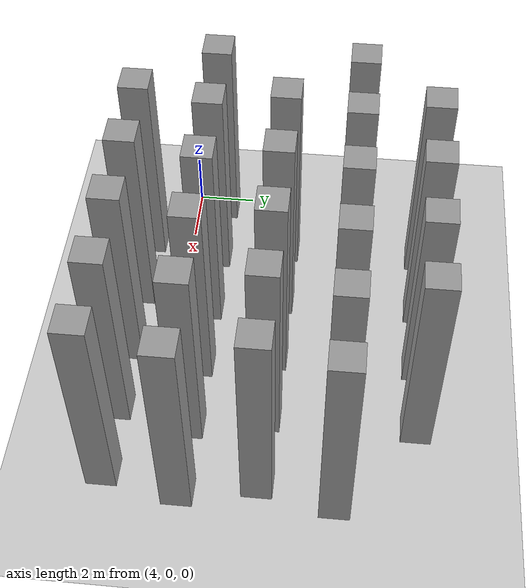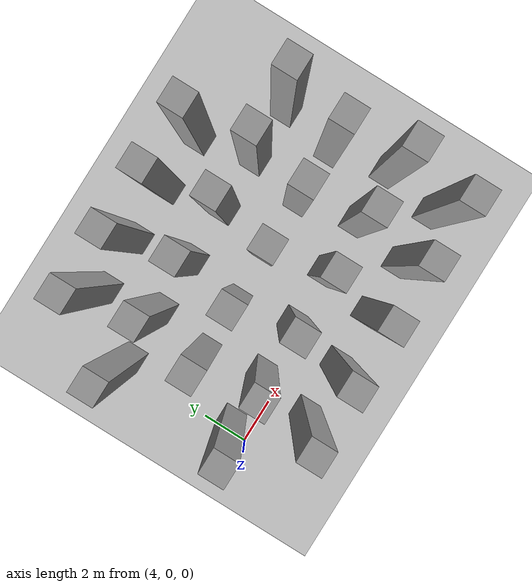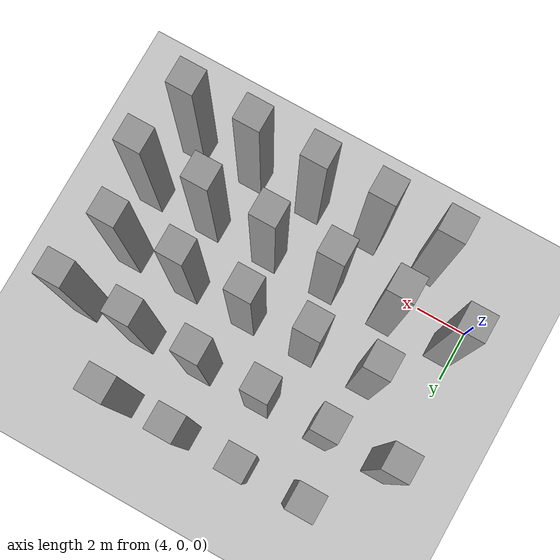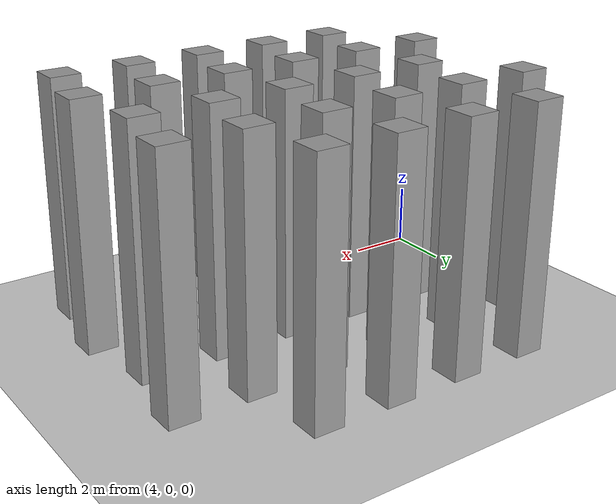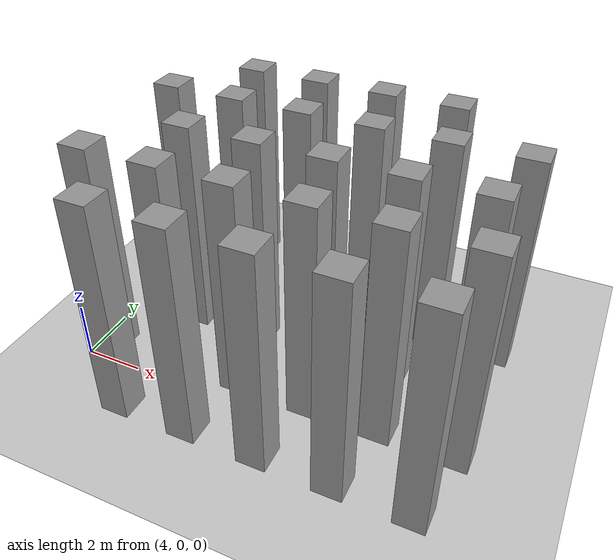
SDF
<sdf version="1.7">
 <world name="default">
  <model name="ground_plane">
   <static>1</static>
   <link name="link">
    <collision name="collision">
     <geometry><plane><normal>0 0 1</normal><size>100 100</size></plane></geometry>
     <surface>
      <contact><collide_bitmask>65535</collide_bitmask></contact>
      <friction><ode><mu>100</mu><mu2>50</mu2></ode></friction>
     </surface>
    </collision>
    <visual name="visual">
     <cast_shadows>0</cast_shadows>
     <geometry><plane><normal>0 0 1</normal><size>100 100</size></plane></geometry>
     <material>
      <script><uri>file://media/materials/scripts/gazebo.material</uri><name>Gazebo/Grey</name></script>
     </material>
    </visual>
   </link>
  </model>
  <model name="unit_box_static112">
   <link name="link">
    <inertial>
     <mass>1</mass>
     <inertia>
      <ixx>0.166667</ixx>
      <ixy>0</ixy>
      <ixz>0</ixz>
      <iyy>0.166667</iyy>
      <iyz>0</iyz>
      <izz>0.166667</izz>
     </inertia>
    </inertial>
    <visual name="visual">
     <geometry><box><size>1 1 8</size></box></geometry>
     <material>
      <script><name>Gazebo/Grey</name><uri>file://media/materials/scripts/gazebo.material</uri></script>
      <shader type="pixel"/>
     </material>
    </visual>
    <collision name="collision">
     <geometry><box><size>1 1 8</size></box></geometry>
     <surface>
      <friction>
       <ode><mu>1</mu><mu2>1</mu2><fdir1>0 0 0</fdir1><slip1>0</slip1><slip2>0</slip2></ode>
       <torsional>
        <coefficient>1</coefficient>
        <patch_radius>0</patch_radius>
        <surface_radius>0</surface_radius>
        <use_patch_radius>1</use_patch_radius>
        <ode><slip>0</slip></ode>
       </torsional>
      </friction>
      <bounce><restitution_coefficient>0</restitution_coefficient><threshold>1e+06</threshold></bounce>
      <contact>
       <collide_without_contact>0</collide_without_contact>
       <collide_without_contact_bitmask>1</collide_without_contact_bitmask>
       <collide_bitmask>1</collide_bitmask>
       <ode>
        <soft_cfm>0</soft_cfm>
        <soft_erp>0.2</soft_erp>
        <kp>1e+13</kp>
        <kd>1</kd>
        <max_vel>0.01</max_vel>
        <min_depth>0</min_depth>
       </ode>
       <bullet>
        <split_impulse>1</split_impulse>
        <split_impulse_penetration_threshold>-0.01</split_impulse_penetration_threshold>
        <soft_cfm>0</soft_cfm>
        <soft_erp>0.2</soft_erp>
        <kp>1e+13</kp>
        <kd>1</kd>
       </bullet>
      </contact>
     </surface>
    </collision>
   </link>
   <static>1</static>
   <pose>6.5 -1.5 4 0 -0 0</pose>
  </model>
  <model name="unit_box_static113">
   <link name="link">
    <inertial>
     <mass>1</mass>
     <inertia>
      <ixx>0.166667</ixx>
      <ixy>0</ixy>
      <ixz>0</ixz>
      <iyy>0.166667</iyy>
      <iyz>0</iyz>
      <izz>0.166667</izz>
     </inertia>
    </inertial>
    <visual name="visual">
     <geometry><box><size>1 1 8</size></box></geometry>
     <material>
      <script><name>Gazebo/Grey</name><uri>file://media/materials/scripts/gazebo.material</uri></script>
      <shader type="pixel"/>
     </material>
    </visual>
    <collision name="collision">
     <geometry><box><size>1 1 8</size></box></geometry>
     <surface>
      <friction>
       <ode><mu>1</mu><mu2>1</mu2><fdir1>0 0 0</fdir1><slip1>0</slip1><slip2>0</slip2></ode>
       <torsional>
        <coefficient>1</coefficient>
        <patch_radius>0</patch_radius>
        <surface_radius>0</surface_radius>
        <use_patch_radius>1</use_patch_radius>
        <ode><slip>0</slip></ode>
       </torsional>
      </friction>
      <bounce><restitution_coefficient>0</restitution_coefficient><threshold>1e+06</threshold></bounce>
      <contact>
       <collide_without_contact>0</collide_without_contact>
       <collide_without_contact_bitmask>1</collide_without_contact_bitmask>
       <collide_bitmask>1</collide_bitmask>
       <ode>
        <soft_cfm>0</soft_cfm>
        <soft_erp>0.2</soft_erp>
        <kp>1e+13</kp>
        <kd>1</kd>
        <max_vel>0.01</max_vel>
        <min_depth>0</min_depth>
       </ode>
       <bullet>
        <split_impulse>1</split_impulse>
        <split_impulse_penetration_threshold>-0.01</split_impulse_penetration_threshold>
        <soft_cfm>0</soft_cfm>
        <soft_erp>0.2</soft_erp>
        <kp>1e+13</kp>
        <kd>1</kd>
       </bullet>
      </contact>
     </surface>
    </collision>
   </link>
   <static>1</static>
   <pose>9 -1.5 4 0 -0 0</pose>
  </model>
  <model name="unit_box_static114">
   <link name="link">
    <inertial>
     <mass>1</mass>
     <inertia>
      <ixx>0.166667</ixx>
      <ixy>0</ixy>
      <ixz>0</ixz>
      <iyy>0.166667</iyy>
      <iyz>0</iyz>
      <izz>0.166667</izz>
     </inertia>
    </inertial>
    <visual name="visual">
     <geometry><box><size>1 1 8</size></box></geometry>
     <material>
      <script><name>Gazebo/Grey</name><uri>file://media/materials/scripts/gazebo.material</uri></script>
      <shader type="pixel"/>
     </material>
    </visual>
    <collision name="collision">
     <geometry><box><size>1 1 8</size></box></geometry>
     <surface>
      <friction>
       <ode><mu>1</mu><mu2>1</mu2><fdir1>0 0 0</fdir1><slip1>0</slip1><slip2>0</slip2></ode>
       <torsional>
        <coefficient>1</coefficient>
        <patch_radius>0</patch_radius>
        <surface_radius>0</surface_radius>
        <use_patch_radius>1</use_patch_radius>
        <ode><slip>0</slip></ode>
       </torsional>
      </friction>
      <bounce><restitution_coefficient>0</restitution_coefficient><threshold>1e+06</threshold></bounce>
      <contact>
       <collide_without_contact>0</collide_without_contact>
       <collide_without_contact_bitmask>1</collide_without_contact_bitmask>
       <collide_bitmask>1</collide_bitmask>
       <ode>
        <soft_cfm>0</soft_cfm>
        <soft_erp>0.2</soft_erp>
        <kp>1e+13</kp>
        <kd>1</kd>
        <max_vel>0.01</max_vel>
        <min_depth>0</min_depth>
       </ode>
       <bullet>
        <split_impulse>1</split_impulse>
        <split_impulse_penetration_threshold>-0.01</split_impulse_penetration_threshold>
        <soft_cfm>0</soft_cfm>
        <soft_erp>0.2</soft_erp>
        <kp>1e+13</kp>
        <kd>1</kd>
       </bullet>
      </contact>
     </surface>
    </collision>
   </link>
   <static>1</static>
   <pose>11.5 -1.5 4 0 -0 0</pose>
  </model>
  <model name="unit_box_static115">
   <link name="link">
    <inertial>
     <mass>1</mass>
     <inertia>
      <ixx>0.166667</ixx>
      <ixy>0</ixy>
      <ixz>0</ixz>
      <iyy>0.166667</iyy>
      <iyz>0</iyz>
      <izz>0.166667</izz>
     </inertia>
    </inertial>
    <visual name="visual">
     <geometry><box><size>1 1 8</size></box></geometry>
     <material>
      <script><name>Gazebo/Grey</name><uri>file://media/materials/scripts/gazebo.material</uri></script>
      <shader type="pixel"/>
     </material>
    </visual>
    <collision name="collision">
     <geometry><box><size>1 1 8</size></box></geometry>
     <surface>
      <friction>
       <ode><mu>1</mu><mu2>1</mu2><fdir1>0 0 0</fdir1><slip1>0</slip1><slip2>0</slip2></ode>
       <torsional>
        <coefficient>1</coefficient>
        <patch_radius>0</patch_radius>
        <surface_radius>0</surface_radius>
        <use_patch_radius>1</use_patch_radius>
        <ode><slip>0</slip></ode>
       </torsional>
      </friction>
      <bounce><restitution_coefficient>0</restitution_coefficient><threshold>1e+06</threshold></bounce>
      <contact>
       <collide_without_contact>0</collide_without_contact>
       <collide_without_contact_bitmask>1</collide_without_contact_bitmask>
       <collide_bitmask>1</collide_bitmask>
       <ode>
        <soft_cfm>0</soft_cfm>
        <soft_erp>0.2</soft_erp>
        <kp>1e+13</kp>
        <kd>1</kd>
        <max_vel>0.01</max_vel>
        <min_depth>0</min_depth>
       </ode>
       <bullet>
        <split_impulse>1</split_impulse>
        <split_impulse_penetration_threshold>-0.01</split_impulse_penetration_threshold>
        <soft_cfm>0</soft_cfm>
        <soft_erp>0.2</soft_erp>
        <kp>1e+13</kp>
        <kd>1</kd>
       </bullet>
      </contact>
     </surface>
    </collision>
   </link>
   <static>1</static>
   <pose>14 -1.5 4 0 -0 0</pose>
  </model>
  <model name="unit_box_static116">
   <link name="link">
    <inertial>
     <mass>1</mass>
     <inertia>
      <ixx>0.166667</ixx>
      <ixy>0</ixy>
      <ixz>0</ixz>
      <iyy>0.166667</iyy>
      <iyz>0</iyz>
      <izz>0.166667</izz>
     </inertia>
    </inertial>
    <visual name="visual">
     <geometry><box><size>1 1 8</size></box></geometry>
     <material>
      <script><name>Gazebo/Grey</name><uri>file://media/materials/scripts/gazebo.material</uri></script>
      <shader type="pixel"/>
     </material>
    </visual>
    <collision name="collision">
     <geometry><box><size>1 1 8</size></box></geometry>
     <surface>
      <friction>
       <ode><mu>1</mu><mu2>1</mu2><fdir1>0 0 0</fdir1><slip1>0</slip1><slip2>0</slip2></ode>
       <torsional>
        <coefficient>1</coefficient>
        <patch_radius>0</patch_radius>
        <surface_radius>0</surface_radius>
        <use_patch_radius>1</use_patch_radius>
        <ode><slip>0</slip></ode>
       </torsional>
      </friction>
      <bounce><restitution_coefficient>0</restitution_coefficient><threshold>1e+06</threshold></bounce>
      <contact>
       <collide_without_contact>0</collide_without_contact>
       <collide_without_contact_bitmask>1</collide_without_contact_bitmask>
       <collide_bitmask>1</collide_bitmask>
       <ode>
        <soft_cfm>0</soft_cfm>
        <soft_erp>0.2</soft_erp>
        <kp>1e+13</kp>
        <kd>1</kd>
        <max_vel>0.01</max_vel>
        <min_depth>0</min_depth>
       </ode>
       <bullet>
        <split_impulse>1</split_impulse>
        <split_impulse_penetration_threshold>-0.01</split_impulse_penetration_threshold>
        <soft_cfm>0</soft_cfm>
        <soft_erp>0.2</soft_erp>
        <kp>1e+13</kp>
        <kd>1</kd>
       </bullet>
      </contact>
     </surface>
    </collision>
   </link>
   <static>1</static>
   <pose>16.5 -1.5 4 0 -0 0</pose>
  </model>
  <model name="unit_box_static126">
   <link name="link">
    <inertial>
     <mass>1</mass>
     <inertia>
      <ixx>0.166667</ixx>
      <ixy>0</ixy>
      <ixz>0</ixz>
      <iyy>0.166667</iyy>
      <iyz>0</iyz>
      <izz>0.166667</izz>
     </inertia>
    </inertial>
    <visual name="visual">
     <geometry><box><size>1 1 8</size></box></geometry>
     <material>
      <script><name>Gazebo/Grey</name><uri>file://media/materials/scripts/gazebo.material</uri></script>
      <shader type="pixel"/>
     </material>
    </visual>
    <collision name="collision">
     <geometry><box><size>1 1 8</size></box></geometry>
     <surface>
      <friction>
       <ode><mu>1</mu><mu2>1</mu2><fdir1>0 0 0</fdir1><slip1>0</slip1><slip2>0</slip2></ode>
       <torsional>
        <coefficient>1</coefficient>
        <patch_radius>0</patch_radius>
        <surface_radius>0</surface_radius>
        <use_patch_radius>1</use_patch_radius>
        <ode><slip>0</slip></ode>
       </torsional>
      </friction>
      <bounce><restitution_coefficient>0</restitution_coefficient><threshold>1e+06</threshold></bounce>
      <contact>
       <collide_without_contact>0</collide_without_contact>
       <collide_without_contact_bitmask>1</collide_without_contact_bitmask>
       <collide_bitmask>1</collide_bitmask>
       <ode>
        <soft_cfm>0</soft_cfm>
        <soft_erp>0.2</soft_erp>
        <kp>1e+13</kp>
        <kd>1</kd>
        <max_vel>0.01</max_vel>
        <min_depth>0</min_depth>
       </ode>
       <bullet>
        <split_impulse>1</split_impulse>
        <split_impulse_penetration_threshold>-0.01</split_impulse_penetration_threshold>
        <soft_cfm>0</soft_cfm>
        <soft_erp>0.2</soft_erp>
        <kp>1e+13</kp>
        <kd>1</kd>
       </bullet>
      </contact>
     </surface>
    </collision>
   </link>
   <static>1</static>
   <pose>4.5 1 4 0 -0 0</pose>
  </model>
  <model name="unit_box_static127">
   <link name="link">
    <inertial>
     <mass>1</mass>
     <inertia>
      <ixx>0.166667</ixx>
      <ixy>0</ixy>
      <ixz>0</ixz>
      <iyy>0.166667</iyy>
      <iyz>0</iyz>
      <izz>0.166667</izz>
     </inertia>
    </inertial>
    <visual name="visual">
     <geometry><box><size>1 1 8</size></box></geometry>
     <material>
      <script><name>Gazebo/Grey</name><uri>file://media/materials/scripts/gazebo.material</uri></script>
      <shader type="pixel"/>
     </material>
    </visual>
    <collision name="collision">
     <geometry><box><size>1 1 8</size></box></geometry>
     <surface>
      <friction>
       <ode><mu>1</mu><mu2>1</mu2><fdir1>0 0 0</fdir1><slip1>0</slip1><slip2>0</slip2></ode>
       <torsional>
        <coefficient>1</coefficient>
        <patch_radius>0</patch_radius>
        <surface_radius>0</surface_radius>
        <use_patch_radius>1</use_patch_radius>
        <ode><slip>0</slip></ode>
       </torsional>
      </friction>
      <bounce><restitution_coefficient>0</restitution_coefficient><threshold>1e+06</threshold></bounce>
      <contact>
       <collide_without_contact>0</collide_without_contact>
       <collide_without_contact_bitmask>1</collide_without_contact_bitmask>
       <collide_bitmask>1</collide_bitmask>
       <ode>
        <soft_cfm>0</soft_cfm>
        <soft_erp>0.2</soft_erp>
        <kp>1e+13</kp>
        <kd>1</kd>
        <max_vel>0.01</max_vel>
        <min_depth>0</min_depth>
       </ode>
       <bullet>
        <split_impulse>1</split_impulse>
        <split_impulse_penetration_threshold>-0.01</split_impulse_penetration_threshold>
        <soft_cfm>0</soft_cfm>
        <soft_erp>0.2</soft_erp>
        <kp>1e+13</kp>
        <kd>1</kd>
       </bullet>
      </contact>
     </surface>
    </collision>
   </link>
   <static>1</static>
   <pose>7 1 4 0 -0 0</pose>
  </model>
  <model name="unit_box_static128">
   <link name="link">
    <inertial>
     <mass>1</mass>
     <inertia>
      <ixx>0.166667</ixx>
      <ixy>0</ixy>
      <ixz>0</ixz>
      <iyy>0.166667</iyy>
      <iyz>0</iyz>
      <izz>0.166667</izz>
     </inertia>
    </inertial>
    <visual name="visual">
     <geometry><box><size>1 1 8</size></box></geometry>
     <material>
      <script><name>Gazebo/Grey</name><uri>file://media/materials/scripts/gazebo.material</uri></script>
      <shader type="pixel"/>
     </material>
    </visual>
    <collision name="collision">
     <geometry><box><size>1 1 8</size></box></geometry>
     <surface>
      <friction>
       <ode><mu>1</mu><mu2>1</mu2><fdir1>0 0 0</fdir1><slip1>0</slip1><slip2>0</slip2></ode>
       <torsional>
        <coefficient>1</coefficient>
        <patch_radius>0</patch_radius>
        <surface_radius>0</surface_radius>
        <use_patch_radius>1</use_patch_radius>
        <ode><slip>0</slip></ode>
       </torsional>
      </friction>
      <bounce><restitution_coefficient>0</restitution_coefficient><threshold>1e+06</threshold></bounce>
      <contact>
       <collide_without_contact>0</collide_without_contact>
       <collide_without_contact_bitmask>1</collide_without_contact_bitmask>
       <collide_bitmask>1</collide_bitmask>
       <ode>
        <soft_cfm>0</soft_cfm>
        <soft_erp>0.2</soft_erp>
        <kp>1e+13</kp>
        <kd>1</kd>
        <max_vel>0.01</max_vel>
        <min_depth>0</min_depth>
       </ode>
       <bullet>
        <split_impulse>1</split_impulse>
        <split_impulse_penetration_threshold>-0.01</split_impulse_penetration_threshold>
        <soft_cfm>0</soft_cfm>
        <soft_erp>0.2</soft_erp>
        <kp>1e+13</kp>
        <kd>1</kd>
       </bullet>
      </contact>
     </surface>
    </collision>
   </link>
   <static>1</static>
   <pose>9.5 1 4 0 -0 0</pose>
  </model>
  <model name="unit_box_static129">
   <link name="link">
    <inertial>
     <mass>1</mass>
     <inertia>
      <ixx>0.166667</ixx>
      <ixy>0</ixy>
      <ixz>0</ixz>
      <iyy>0.166667</iyy>
      <iyz>0</iyz>
      <izz>0.166667</izz>
     </inertia>
    </inertial>
    <visual name="visual">
     <geometry><box><size>1 1 8</size></box></geometry>
     <material>
      <script><name>Gazebo/Grey</name><uri>file://media/materials/scripts/gazebo.material</uri></script>
      <shader type="pixel"/>
     </material>
    </visual>
    <collision name="collision">
     <geometry><box><size>1 1 8</size></box></geometry>
     <surface>
      <friction>
       <ode><mu>1</mu><mu2>1</mu2><fdir1>0 0 0</fdir1><slip1>0</slip1><slip2>0</slip2></ode>
       <torsional>
        <coefficient>1</coefficient>
        <patch_radius>0</patch_radius>
        <surface_radius>0</surface_radius>
        <use_patch_radius>1</use_patch_radius>
        <ode><slip>0</slip></ode>
       </torsional>
      </friction>
      <bounce><restitution_coefficient>0</restitution_coefficient><threshold>1e+06</threshold></bounce>
      <contact>
       <collide_without_contact>0</collide_without_contact>
       <collide_without_contact_bitmask>1</collide_without_contact_bitmask>
       <collide_bitmask>1</collide_bitmask>
       <ode>
        <soft_cfm>0</soft_cfm>
        <soft_erp>0.2</soft_erp>
        <kp>1e+13</kp>
        <kd>1</kd>
        <max_vel>0.01</max_vel>
        <min_depth>0</min_depth>
       </ode>
       <bullet>
        <split_impulse>1</split_impulse>
        <split_impulse_penetration_threshold>-0.01</split_impulse_penetration_threshold>
        <soft_cfm>0</soft_cfm>
        <soft_erp>0.2</soft_erp>
        <kp>1e+13</kp>
        <kd>1</kd>
       </bullet>
      </contact>
     </surface>
    </collision>
   </link>
   <static>1</static>
   <pose>12 1 4 0 -0 0</pose>
  </model>
  <model name="unit_box_static130">
   <link name="link">
    <inertial>
     <mass>1</mass>
     <inertia>
      <ixx>0.166667</ixx>
      <ixy>0</ixy>
      <ixz>0</ixz>
      <iyy>0.166667</iyy>
      <iyz>0</iyz>
      <izz>0.166667</izz>
     </inertia>
    </inertial>
    <visual name="visual">
     <geometry><box><size>1 1 8</size></box></geometry>
     <material>
      <script><name>Gazebo/Grey</name><uri>file://media/materials/scripts/gazebo.material</uri></script>
      <shader type="pixel"/>
     </material>
    </visual>
    <collision name="collision">
     <geometry><box><size>1 1 8</size></box></geometry>
     <surface>
      <friction>
       <ode><mu>1</mu><mu2>1</mu2><fdir1>0 0 0</fdir1><slip1>0</slip1><slip2>0</slip2></ode>
       <torsional>
        <coefficient>1</coefficient>
        <patch_radius>0</patch_radius>
        <surface_radius>0</surface_radius>
        <use_patch_radius>1</use_patch_radius>
        <ode><slip>0</slip></ode>
       </torsional>
      </friction>
      <bounce><restitution_coefficient>0</restitution_coefficient><threshold>1e+06</threshold></bounce>
      <contact>
       <collide_without_contact>0</collide_without_contact>
       <collide_without_contact_bitmask>1</collide_without_contact_bitmask>
       <collide_bitmask>1</collide_bitmask>
       <ode>
        <soft_cfm>0</soft_cfm>
        <soft_erp>0.2</soft_erp>
        <kp>1e+13</kp>
        <kd>1</kd>
        <max_vel>0.01</max_vel>
        <min_depth>0</min_depth>
       </ode>
       <bullet>
        <split_impulse>1</split_impulse>
        <split_impulse_penetration_threshold>-0.01</split_impulse_penetration_threshold>
        <soft_cfm>0</soft_cfm>
        <soft_erp>0.2</soft_erp>
        <kp>1e+13</kp>
        <kd>1</kd>
       </bullet>
      </contact>
     </surface>
    </collision>
   </link>
   <static>1</static>
   <pose>14.5 1 4 0 -0 0</pose>
  </model>
  <model name="unit_box_static131">
   <link name="link">
    <inertial>
     <mass>1</mass>
     <inertia>
      <ixx>0.166667</ixx>
      <ixy>0</ixy>
      <ixz>0</ixz>
      <iyy>0.166667</iyy>
      <iyz>0</iyz>
      <izz>0.166667</izz>
     </inertia>
    </inertial>
    <visual name="visual">
     <geometry><box><size>1 1 8</size></box></geometry>
     <material>
      <script><name>Gazebo/Grey</name><uri>file://media/materials/scripts/gazebo.material</uri></script>
      <shader type="pixel"/>
     </material>
    </visual>
    <collision name="collision">
     <geometry><box><size>1 1 8</size></box></geometry>
     <surface>
      <friction>
       <ode><mu>1</mu><mu2>1</mu2><fdir1>0 0 0</fdir1><slip1>0</slip1><slip2>0</slip2></ode>
       <torsional>
        <coefficient>1</coefficient>
        <patch_radius>0</patch_radius>
        <surface_radius>0</surface_radius>
        <use_patch_radius>1</use_patch_radius>
        <ode><slip>0</slip></ode>
       </torsional>
      </friction>
      <bounce><restitution_coefficient>0</restitution_coefficient><threshold>1e+06</threshold></bounce>
      <contact>
       <collide_without_contact>0</collide_without_contact>
       <collide_without_contact_bitmask>1</collide_without_contact_bitmask>
       <collide_bitmask>1</collide_bitmask>
       <ode>
        <soft_cfm>0</soft_cfm>
        <soft_erp>0.2</soft_erp>
        <kp>1e+13</kp>
        <kd>1</kd>
        <max_vel>0.01</max_vel>
        <min_depth>0</min_depth>
       </ode>
       <bullet>
        <split_impulse>1</split_impulse>
        <split_impulse_penetration_threshold>-0.01</split_impulse_penetration_threshold>
        <soft_cfm>0</soft_cfm>
        <soft_erp>0.2</soft_erp>
        <kp>1e+13</kp>
        <kd>1</kd>
       </bullet>
      </contact>
     </surface>
    </collision>
   </link>
   <static>1</static>
   <pose>17 1 4 0 -0 0</pose>
  </model>
  <model name="unit_box_static141">
   <link name="link">
    <inertial>
     <mass>1</mass>
     <inertia>
      <ixx>0.166667</ixx>
      <ixy>0</ixy>
      <ixz>0</ixz>
      <iyy>0.166667</iyy>
      <iyz>0</iyz>
      <izz>0.166667</izz>
     </inertia>
    </inertial>
    <visual name="visual">
     <geometry><box><size>1 1 8</size></box></geometry>
     <material>
      <script><name>Gazebo/Grey</name><uri>file://media/materials/scripts/gazebo.material</uri></script>
      <shader type="pixel"/>
     </material>
    </visual>
    <collision name="collision">
     <geometry><box><size>1 1 8</size></box></geometry>
     <surface>
      <friction>
       <ode><mu>1</mu><mu2>1</mu2><fdir1>0 0 0</fdir1><slip1>0</slip1><slip2>0</slip2></ode>
       <torsional>
        <coefficient>1</coefficient>
        <patch_radius>0</patch_radius>
        <surface_radius>0</surface_radius>
        <use_patch_radius>1</use_patch_radius>
        <ode><slip>0</slip></ode>
       </torsional>
      </friction>
      <bounce><restitution_coefficient>0</restitution_coefficient><threshold>1e+06</threshold></bounce>
      <contact>
       <collide_without_contact>0</collide_without_contact>
       <collide_without_contact_bitmask>1</collide_without_contact_bitmask>
       <collide_bitmask>1</collide_bitmask>
       <ode>
        <soft_cfm>0</soft_cfm>
        <soft_erp>0.2</soft_erp>
        <kp>1e+13</kp>
        <kd>1</kd>
        <max_vel>0.01</max_vel>
        <min_depth>0</min_depth>
       </ode>
       <bullet>
        <split_impulse>1</split_impulse>
        <split_impulse_penetration_threshold>-0.01</split_impulse_penetration_threshold>
        <soft_cfm>0</soft_cfm>
        <soft_erp>0.2</soft_erp>
        <kp>1e+13</kp>
        <kd>1</kd>
       </bullet>
      </contact>
     </surface>
    </collision>
   </link>
   <static>1</static>
   <pose>6.5 3.5 4 0 -0 0</pose>
  </model>
  <model name="unit_box_static142">
   <link name="link">
    <inertial>
     <mass>1</mass>
     <inertia>
      <ixx>0.166667</ixx>
      <ixy>0</ixy>
      <ixz>0</ixz>
      <iyy>0.166667</iyy>
      <iyz>0</iyz>
      <izz>0.166667</izz>
     </inertia>
    </inertial>
    <visual name="visual">
     <geometry><box><size>1 1 8</size></box></geometry>
     <material>
      <script><name>Gazebo/Grey</name><uri>file://media/materials/scripts/gazebo.material</uri></script>
      <shader type="pixel"/>
     </material>
    </visual>
    <collision name="collision">
     <geometry><box><size>1 1 8</size></box></geometry>
     <surface>
      <friction>
       <ode><mu>1</mu><mu2>1</mu2><fdir1>0 0 0</fdir1><slip1>0</slip1><slip2>0</slip2></ode>
       <torsional>
        <coefficient>1</coefficient>
        <patch_radius>0</patch_radius>
        <surface_radius>0</surface_radius>
        <use_patch_radius>1</use_patch_radius>
        <ode><slip>0</slip></ode>
       </torsional>
      </friction>
      <bounce><restitution_coefficient>0</restitution_coefficient><threshold>1e+06</threshold></bounce>
      <contact>
       <collide_without_contact>0</collide_without_contact>
       <collide_without_contact_bitmask>1</collide_without_contact_bitmask>
       <collide_bitmask>1</collide_bitmask>
       <ode>
        <soft_cfm>0</soft_cfm>
        <soft_erp>0.2</soft_erp>
        <kp>1e+13</kp>
        <kd>1</kd>
        <max_vel>0.01</max_vel>
        <min_depth>0</min_depth>
       </ode>
       <bullet>
        <split_impulse>1</split_impulse>
        <split_impulse_penetration_threshold>-0.01</split_impulse_penetration_threshold>
        <soft_cfm>0</soft_cfm>
        <soft_erp>0.2</soft_erp>
        <kp>1e+13</kp>
        <kd>1</kd>
       </bullet>
      </contact>
     </surface>
    </collision>
   </link>
   <static>1</static>
   <pose>9 3.5 4 0 -0 0</pose>
  </model>
  <model name="unit_box_static143">
   <link name="link">
    <inertial>
     <mass>1</mass>
     <inertia>
      <ixx>0.166667</ixx>
      <ixy>0</ixy>
      <ixz>0</ixz>
      <iyy>0.166667</iyy>
      <iyz>0</iyz>
      <izz>0.166667</izz>
     </inertia>
    </inertial>
    <visual name="visual">
     <geometry><box><size>1 1 8</size></box></geometry>
     <material>
      <script><name>Gazebo/Grey</name><uri>file://media/materials/scripts/gazebo.material</uri></script>
      <shader type="pixel"/>
     </material>
    </visual>
    <collision name="collision">
     <geometry><box><size>1 1 8</size></box></geometry>
     <surface>
      <friction>
       <ode><mu>1</mu><mu2>1</mu2><fdir1>0 0 0</fdir1><slip1>0</slip1><slip2>0</slip2></ode>
       <torsional>
        <coefficient>1</coefficient>
        <patch_radius>0</patch_radius>
        <surface_radius>0</surface_radius>
        <use_patch_radius>1</use_patch_radius>
        <ode><slip>0</slip></ode>
       </torsional>
      </friction>
      <bounce><restitution_coefficient>0</restitution_coefficient><threshold>1e+06</threshold></bounce>
      <contact>
       <collide_without_contact>0</collide_without_contact>
       <collide_without_contact_bitmask>1</collide_without_contact_bitmask>
       <collide_bitmask>1</collide_bitmask>
       <ode>
        <soft_cfm>0</soft_cfm>
        <soft_erp>0.2</soft_erp>
        <kp>1e+13</kp>
        <kd>1</kd>
        <max_vel>0.01</max_vel>
        <min_depth>0</min_depth>
       </ode>
       <bullet>
        <split_impulse>1</split_impulse>
        <split_impulse_penetration_threshold>-0.01</split_impulse_penetration_threshold>
        <soft_cfm>0</soft_cfm>
        <soft_erp>0.2</soft_erp>
        <kp>1e+13</kp>
        <kd>1</kd>
       </bullet>
      </contact>
     </surface>
    </collision>
   </link>
   <static>1</static>
   <pose>11.5 3.5 4 0 -0 0</pose>
  </model>
  <model name="unit_box_static144">
   <link name="link">
    <inertial>
     <mass>1</mass>
     <inertia>
      <ixx>0.166667</ixx>
      <ixy>0</ixy>
      <ixz>0</ixz>
      <iyy>0.166667</iyy>
      <iyz>0</iyz>
      <izz>0.166667</izz>
     </inertia>
    </inertial>
    <visual name="visual">
     <geometry><box><size>1 1 8</size></box></geometry>
     <material>
      <script><name>Gazebo/Grey</name><uri>file://media/materials/scripts/gazebo.material</uri></script>
      <shader type="pixel"/>
     </material>
    </visual>
    <collision name="collision">
     <geometry><box><size>1 1 8</size></box></geometry>
     <surface>
      <friction>
       <ode><mu>1</mu><mu2>1</mu2><fdir1>0 0 0</fdir1><slip1>0</slip1><slip2>0</slip2></ode>
       <torsional>
        <coefficient>1</coefficient>
        <patch_radius>0</patch_radius>
        <surface_radius>0</surface_radius>
        <use_patch_radius>1</use_patch_radius>
        <ode><slip>0</slip></ode>
       </torsional>
      </friction>
      <bounce><restitution_coefficient>0</restitution_coefficient><threshold>1e+06</threshold></bounce>
      <contact>
       <collide_without_contact>0</collide_without_contact>
       <collide_without_contact_bitmask>1</collide_without_contact_bitmask>
       <collide_bitmask>1</collide_bitmask>
       <ode>
        <soft_cfm>0</soft_cfm>
        <soft_erp>0.2</soft_erp>
        <kp>1e+13</kp>
        <kd>1</kd>
        <max_vel>0.01</max_vel>
        <min_depth>0</min_depth>
       </ode>
       <bullet>
        <split_impulse>1</split_impulse>
        <split_impulse_penetration_threshold>-0.01</split_impulse_penetration_threshold>
        <soft_cfm>0</soft_cfm>
        <soft_erp>0.2</soft_erp>
        <kp>1e+13</kp>
        <kd>1</kd>
       </bullet>
      </contact>
     </surface>
    </collision>
   </link>
   <static>1</static>
   <pose>14 3.5 4 0 -0 0</pose>
  </model>
  <model name="unit_box_static145">
   <link name="link">
    <inertial>
     <mass>1</mass>
     <inertia>
      <ixx>0.166667</ixx>
      <ixy>0</ixy>
      <ixz>0</ixz>
      <iyy>0.166667</iyy>
      <iyz>0</iyz>
      <izz>0.166667</izz>
     </inertia>
    </inertial>
    <visual name="visual">
     <geometry><box><size>1 1 8</size></box></geometry>
     <material>
      <script><name>Gazebo/Grey</name><uri>file://media/materials/scripts/gazebo.material</uri></script>
      <shader type="pixel"/>
     </material>
    </visual>
    <collision name="collision">
     <geometry><box><size>1 1 8</size></box></geometry>
     <surface>
      <friction>
       <ode><mu>1</mu><mu2>1</mu2><fdir1>0 0 0</fdir1><slip1>0</slip1><slip2>0</slip2></ode>
       <torsional>
        <coefficient>1</coefficient>
        <patch_radius>0</patch_radius>
        <surface_radius>0</surface_radius>
        <use_patch_radius>1</use_patch_radius>
        <ode><slip>0</slip></ode>
       </torsional>
      </friction>
      <bounce><restitution_coefficient>0</restitution_coefficient><threshold>1e+06</threshold></bounce>
      <contact>
       <collide_without_contact>0</collide_without_contact>
       <collide_without_contact_bitmask>1</collide_without_contact_bitmask>
       <collide_bitmask>1</collide_bitmask>
       <ode>
        <soft_cfm>0</soft_cfm>
        <soft_erp>0.2</soft_erp>
        <kp>1e+13</kp>
        <kd>1</kd>
        <max_vel>0.01</max_vel>
        <min_depth>0</min_depth>
       </ode>
       <bullet>
        <split_impulse>1</split_impulse>
        <split_impulse_penetration_threshold>-0.01</split_impulse_penetration_threshold>
        <soft_cfm>0</soft_cfm>
        <soft_erp>0.2</soft_erp>
        <kp>1e+13</kp>
        <kd>1</kd>
       </bullet>
      </contact>
     </surface>
    </collision>
   </link>
   <static>1</static>
   <pose>16.5 3.5 4 0 -0 0</pose>
  </model>
  <model name="unit_box_static155">
   <link name="link">
    <inertial>
     <mass>1</mass>
     <inertia>
      <ixx>0.166667</ixx>
      <ixy>0</ixy>
      <ixz>0</ixz>
      <iyy>0.166667</iyy>
      <iyz>0</iyz>
      <izz>0.166667</izz>
     </inertia>
    </inertial>
    <visual name="visual">
     <geometry><box><size>1 1 8</size></box></geometry>
     <material>
      <script><name>Gazebo/Grey</name><uri>file://media/materials/scripts/gazebo.material</uri></script>
      <shader type="pixel"/>
     </material>
    </visual>
    <collision name="collision">
     <geometry><box><size>1 1 8</size></box></geometry>
     <surface>
      <friction>
       <ode><mu>1</mu><mu2>1</mu2><fdir1>0 0 0</fdir1><slip1>0</slip1><slip2>0</slip2></ode>
       <torsional>
        <coefficient>1</coefficient>
        <patch_radius>0</patch_radius>
        <surface_radius>0</surface_radius>
        <use_patch_radius>1</use_patch_radius>
        <ode><slip>0</slip></ode>
       </torsional>
      </friction>
      <bounce><restitution_coefficient>0</restitution_coefficient><threshold>1e+06</threshold></bounce>
      <contact>
       <collide_without_contact>0</collide_without_contact>
       <collide_without_contact_bitmask>1</collide_without_contact_bitmask>
       <collide_bitmask>1</collide_bitmask>
       <ode>
        <soft_cfm>0</soft_cfm>
        <soft_erp>0.2</soft_erp>
        <kp>1e+13</kp>
        <kd>1</kd>
        <max_vel>0.01</max_vel>
        <min_depth>0</min_depth>
       </ode>
       <bullet>
        <split_impulse>1</split_impulse>
        <split_impulse_penetration_threshold>-0.01</split_impulse_penetration_threshold>
        <soft_cfm>0</soft_cfm>
        <soft_erp>0.2</soft_erp>
        <kp>1e+13</kp>
        <kd>1</kd>
       </bullet>
      </contact>
     </surface>
    </collision>
   </link>
   <static>1</static>
   <pose>4.5 6 4 0 -0 0</pose>
  </model>
  <model name="unit_box_static156">
   <link name="link">
    <inertial>
     <mass>1</mass>
     <inertia>
      <ixx>0.166667</ixx>
      <ixy>0</ixy>
      <ixz>0</ixz>
      <iyy>0.166667</iyy>
      <iyz>0</iyz>
      <izz>0.166667</izz>
     </inertia>
    </inertial>
    <visual name="visual">
     <geometry><box><size>1 1 8</size></box></geometry>
     <material>
      <script><name>Gazebo/Grey</name><uri>file://media/materials/scripts/gazebo.material</uri></script>
      <shader type="pixel"/>
     </material>
    </visual>
    <collision name="collision">
     <geometry><box><size>1 1 8</size></box></geometry>
     <surface>
      <friction>
       <ode><mu>1</mu><mu2>1</mu2><fdir1>0 0 0</fdir1><slip1>0</slip1><slip2>0</slip2></ode>
       <torsional>
        <coefficient>1</coefficient>
        <patch_radius>0</patch_radius>
        <surface_radius>0</surface_radius>
        <use_patch_radius>1</use_patch_radius>
        <ode><slip>0</slip></ode>
       </torsional>
      </friction>
      <bounce><restitution_coefficient>0</restitution_coefficient><threshold>1e+06</threshold></bounce>
      <contact>
       <collide_without_contact>0</collide_without_contact>
       <collide_without_contact_bitmask>1</collide_without_contact_bitmask>
       <collide_bitmask>1</collide_bitmask>
       <ode>
        <soft_cfm>0</soft_cfm>
        <soft_erp>0.2</soft_erp>
        <kp>1e+13</kp>
        <kd>1</kd>
        <max_vel>0.01</max_vel>
        <min_depth>0</min_depth>
       </ode>
       <bullet>
        <split_impulse>1</split_impulse>
        <split_impulse_penetration_threshold>-0.01</split_impulse_penetration_threshold>
        <soft_cfm>0</soft_cfm>
        <soft_erp>0.2</soft_erp>
        <kp>1e+13</kp>
        <kd>1</kd>
       </bullet>
      </contact>
     </surface>
    </collision>
   </link>
   <static>1</static>
   <pose>7 6 4 0 -0 0</pose>
  </model>
  <model name="unit_box_static157">
   <link name="link">
    <inertial>
     <mass>1</mass>
     <inertia>
      <ixx>0.166667</ixx>
      <ixy>0</ixy>
      <ixz>0</ixz>
      <iyy>0.166667</iyy>
      <iyz>0</iyz>
      <izz>0.166667</izz>
     </inertia>
    </inertial>
    <visual name="visual">
     <geometry><box><size>1 1 8</size></box></geometry>
     <material>
      <script><name>Gazebo/Grey</name><uri>file://media/materials/scripts/gazebo.material</uri></script>
      <shader type="pixel"/>
     </material>
    </visual>
    <collision name="collision">
     <geometry><box><size>1 1 8</size></box></geometry>
     <surface>
      <friction>
       <ode><mu>1</mu><mu2>1</mu2><fdir1>0 0 0</fdir1><slip1>0</slip1><slip2>0</slip2></ode>
       <torsional>
        <coefficient>1</coefficient>
        <patch_radius>0</patch_radius>
        <surface_radius>0</surface_radius>
        <use_patch_radius>1</use_patch_radius>
        <ode><slip>0</slip></ode>
       </torsional>
      </friction>
      <bounce><restitution_coefficient>0</restitution_coefficient><threshold>1e+06</threshold></bounce>
      <contact>
       <collide_without_contact>0</collide_without_contact>
       <collide_without_contact_bitmask>1</collide_without_contact_bitmask>
       <collide_bitmask>1</collide_bitmask>
       <ode>
        <soft_cfm>0</soft_cfm>
        <soft_erp>0.2</soft_erp>
        <kp>1e+13</kp>
        <kd>1</kd>
        <max_vel>0.01</max_vel>
        <min_depth>0</min_depth>
       </ode>
       <bullet>
        <split_impulse>1</split_impulse>
        <split_impulse_penetration_threshold>-0.01</split_impulse_penetration_threshold>
        <soft_cfm>0</soft_cfm>
        <soft_erp>0.2</soft_erp>
        <kp>1e+13</kp>
        <kd>1</kd>
       </bullet>
      </contact>
     </surface>
    </collision>
   </link>
   <static>1</static>
   <pose>9.5 6 4 0 -0 0</pose>
  </model>
  <model name="unit_box_static158">
   <link name="link">
    <inertial>
     <mass>1</mass>
     <inertia>
      <ixx>0.166667</ixx>
      <ixy>0</ixy>
      <ixz>0</ixz>
      <iyy>0.166667</iyy>
      <iyz>0</iyz>
      <izz>0.166667</izz>
     </inertia>
    </inertial>
    <visual name="visual">
     <geometry><box><size>1 1 8</size></box></geometry>
     <material>
      <script><name>Gazebo/Grey</name><uri>file://media/materials/scripts/gazebo.material</uri></script>
      <shader type="pixel"/>
     </material>
    </visual>
    <collision name="collision">
     <geometry><box><size>1 1 8</size></box></geometry>
     <surface>
      <friction>
       <ode><mu>1</mu><mu2>1</mu2><fdir1>0 0 0</fdir1><slip1>0</slip1><slip2>0</slip2></ode>
       <torsional>
        <coefficient>1</coefficient>
        <patch_radius>0</patch_radius>
        <surface_radius>0</surface_radius>
        <use_patch_radius>1</use_patch_radius>
        <ode><slip>0</slip></ode>
       </torsional>
      </friction>
      <bounce><restitution_coefficient>0</restitution_coefficient><threshold>1e+06</threshold></bounce>
      <contact>
       <collide_without_contact>0</collide_without_contact>
       <collide_without_contact_bitmask>1</collide_without_contact_bitmask>
       <collide_bitmask>1</collide_bitmask>
       <ode>
        <soft_cfm>0</soft_cfm>
        <soft_erp>0.2</soft_erp>
        <kp>1e+13</kp>
        <kd>1</kd>
        <max_vel>0.01</max_vel>
        <min_depth>0</min_depth>
       </ode>
       <bullet>
        <split_impulse>1</split_impulse>
        <split_impulse_penetration_threshold>-0.01</split_impulse_penetration_threshold>
        <soft_cfm>0</soft_cfm>
        <soft_erp>0.2</soft_erp>
        <kp>1e+13</kp>
        <kd>1</kd>
       </bullet>
      </contact>
     </surface>
    </collision>
   </link>
   <static>1</static>
   <pose>12 6 4 0 -0 0</pose>
  </model>
  <model name="unit_box_static159">
   <link name="link">
    <inertial>
     <mass>1</mass>
     <inertia>
      <ixx>0.166667</ixx>
      <ixy>0</ixy>
      <ixz>0</ixz>
      <iyy>0.166667</iyy>
      <iyz>0</iyz>
      <izz>0.166667</izz>
     </inertia>
    </inertial>
    <visual name="visual">
     <geometry><box><size>1 1 8</size></box></geometry>
     <material>
      <script><name>Gazebo/Grey</name><uri>file://media/materials/scripts/gazebo.material</uri></script>
      <shader type="pixel"/>
     </material>
    </visual>
    <collision name="collision">
     <geometry><box><size>1 1 8</size></box></geometry>
     <surface>
      <friction>
       <ode><mu>1</mu><mu2>1</mu2><fdir1>0 0 0</fdir1><slip1>0</slip1><slip2>0</slip2></ode>
       <torsional>
        <coefficient>1</coefficient>
        <patch_radius>0</patch_radius>
        <surface_radius>0</surface_radius>
        <use_patch_radius>1</use_patch_radius>
        <ode><slip>0</slip></ode>
       </torsional>
      </friction>
      <bounce><restitution_coefficient>0</restitution_coefficient><threshold>1e+06</threshold></bounce>
      <contact>
       <collide_without_contact>0</collide_without_contact>
       <collide_without_contact_bitmask>1</collide_without_contact_bitmask>
       <collide_bitmask>1</collide_bitmask>
       <ode>
        <soft_cfm>0</soft_cfm>
        <soft_erp>0.2</soft_erp>
        <kp>1e+13</kp>
        <kd>1</kd>
        <max_vel>0.01</max_vel>
        <min_depth>0</min_depth>
       </ode>
       <bullet>
        <split_impulse>1</split_impulse>
        <split_impulse_penetration_threshold>-0.01</split_impulse_penetration_threshold>
        <soft_cfm>0</soft_cfm>
        <soft_erp>0.2</soft_erp>
        <kp>1e+13</kp>
        <kd>1</kd>
       </bullet>
      </contact>
     </surface>
    </collision>
   </link>
   <static>1</static>
   <pose>14.5 6 4 0 -0 0</pose>
  </model>
  <model name="unit_box_static160">
   <link name="link">
    <inertial>
     <mass>1</mass>
     <inertia>
      <ixx>0.166667</ixx>
      <ixy>0</ixy>
      <ixz>0</ixz>
      <iyy>0.166667</iyy>
      <iyz>0</iyz>
      <izz>0.166667</izz>
     </inertia>
    </inertial>
    <visual name="visual">
     <geometry><box><size>1 1 8</size></box></geometry>
     <material>
      <script><name>Gazebo/Grey</name><uri>file://media/materials/scripts/gazebo.material</uri></script>
      <shader type="pixel"/>
     </material>
    </visual>
    <collision name="collision">
     <geometry><box><size>1 1 8</size></box></geometry>
     <surface>
      <friction>
       <ode><mu>1</mu><mu2>1</mu2><fdir1>0 0 0</fdir1><slip1>0</slip1><slip2>0</slip2></ode>
       <torsional>
        <coefficient>1</coefficient>
        <patch_radius>0</patch_radius>
        <surface_radius>0</surface_radius>
        <use_patch_radius>1</use_patch_radius>
        <ode><slip>0</slip></ode>
       </torsional>
      </friction>
      <bounce><restitution_coefficient>0</restitution_coefficient><threshold>1e+06</threshold></bounce>
      <contact>
       <collide_without_contact>0</collide_without_contact>
       <collide_without_contact_bitmask>1</collide_without_contact_bitmask>
       <collide_bitmask>1</collide_bitmask>
       <ode>
        <soft_cfm>0</soft_cfm>
        <soft_erp>0.2</soft_erp>
        <kp>1e+13</kp>
        <kd>1</kd>
        <max_vel>0.01</max_vel>
        <min_depth>0</min_depth>
       </ode>
       <bullet>
        <split_impulse>1</split_impulse>
        <split_impulse_penetration_threshold>-0.01</split_impulse_penetration_threshold>
        <soft_cfm>0</soft_cfm>
        <soft_erp>0.2</soft_erp>
        <kp>1e+13</kp>
        <kd>1</kd>
       </bullet>
      </contact>
     </surface>
    </collision>
   </link>
   <static>1</static>
   <pose>17 6 4 0 -0 0</pose>
  </model>
  <model name="unit_box_static170">
   <link name="link">
    <inertial>
     <mass>1</mass>
     <inertia>
      <ixx>0.166667</ixx>
      <ixy>0</ixy>
      <ixz>0</ixz>
      <iyy>0.166667</iyy>
      <iyz>0</iyz>
      <izz>0.166667</izz>
     </inertia>
    </inertial>
    <visual name="visual">
     <geometry><box><size>1 1 8</size></box></geometry>
     <material>
      <script><name>Gazebo/Grey</name><uri>file://media/materials/scripts/gazebo.material</uri></script>
      <shader type="pixel"/>
     </material>
    </visual>
    <collision name="collision">
     <geometry><box><size>1 1 8</size></box></geometry>
     <surface>
      <friction>
       <ode><mu>1</mu><mu2>1</mu2><fdir1>0 0 0</fdir1><slip1>0</slip1><slip2>0</slip2></ode>
       <torsional>
        <coefficient>1</coefficient>
        <patch_radius>0</patch_radius>
        <surface_radius>0</surface_radius>
        <use_patch_radius>1</use_patch_radius>
        <ode><slip>0</slip></ode>
       </torsional>
      </friction>
      <bounce><restitution_coefficient>0</restitution_coefficient><threshold>1e+06</threshold></bounce>
      <contact>
       <collide_without_contact>0</collide_without_contact>
       <collide_without_contact_bitmask>1</collide_without_contact_bitmask>
       <collide_bitmask>1</collide_bitmask>
       <ode>
        <soft_cfm>0</soft_cfm>
        <soft_erp>0.2</soft_erp>
        <kp>1e+13</kp>
        <kd>1</kd>
        <max_vel>0.01</max_vel>
        <min_depth>0</min_depth>
       </ode>
       <bullet>
        <split_impulse>1</split_impulse>
        <split_impulse_penetration_threshold>-0.01</split_impulse_penetration_threshold>
        <soft_cfm>0</soft_cfm>
        <soft_erp>0.2</soft_erp>
        <kp>1e+13</kp>
        <kd>1</kd>
       </bullet>
      </contact>
     </surface>
    </collision>
   </link>
   <static>1</static>
   <pose>6.5 8.5 4 0 -0 0</pose>
  </model>
  <model name="unit_box_static171">
   <link name="link">
    <inertial>
     <mass>1</mass>
     <inertia>
      <ixx>0.166667</ixx>
      <ixy>0</ixy>
      <ixz>0</ixz>
      <iyy>0.166667</iyy>
      <iyz>0</iyz>
      <izz>0.166667</izz>
     </inertia>
    </inertial>
    <visual name="visual">
     <geometry><box><size>1 1 8</size></box></geometry>
     <material>
      <script><name>Gazebo/Grey</name><uri>file://media/materials/scripts/gazebo.material</uri></script>
      <shader type="pixel"/>
     </material>
    </visual>
    <collision name="collision">
     <geometry><box><size>1 1 8</size></box></geometry>
     <surface>
      <friction>
       <ode><mu>1</mu><mu2>1</mu2><fdir1>0 0 0</fdir1><slip1>0</slip1><slip2>0</slip2></ode>
       <torsional>
        <coefficient>1</coefficient>
        <patch_radius>0</patch_radius>
        <surface_radius>0</surface_radius>
        <use_patch_radius>1</use_patch_radius>
        <ode><slip>0</slip></ode>
       </torsional>
      </friction>
      <bounce><restitution_coefficient>0</restitution_coefficient><threshold>1e+06</threshold></bounce>
      <contact>
       <collide_without_contact>0</collide_without_contact>
       <collide_without_contact_bitmask>1</collide_without_contact_bitmask>
       <collide_bitmask>1</collide_bitmask>
       <ode>
        <soft_cfm>0</soft_cfm>
        <soft_erp>0.2</soft_erp>
        <kp>1e+13</kp>
        <kd>1</kd>
        <max_vel>0.01</max_vel>
        <min_depth>0</min_depth>
       </ode>
       <bullet>
        <split_impulse>1</split_impulse>
        <split_impulse_penetration_threshold>-0.01</split_impulse_penetration_threshold>
        <soft_cfm>0</soft_cfm>
        <soft_erp>0.2</soft_erp>
        <kp>1e+13</kp>
        <kd>1</kd>
       </bullet>
      </contact>
     </surface>
    </collision>
   </link>
   <static>1</static>
   <pose>9 8.5 4 0 -0 0</pose>
  </model>
  <model name="unit_box_static172">
   <link name="link">
    <inertial>
     <mass>1</mass>
     <inertia>
      <ixx>0.166667</ixx>
      <ixy>0</ixy>
      <ixz>0</ixz>
      <iyy>0.166667</iyy>
      <iyz>0</iyz>
      <izz>0.166667</izz>
     </inertia>
    </inertial>
    <visual name="visual">
     <geometry><box><size>1 1 8</size></box></geometry>
     <material>
      <script><name>Gazebo/Grey</name><uri>file://media/materials/scripts/gazebo.material</uri></script>
      <shader type="pixel"/>
     </material>
    </visual>
    <collision name="collision">
     <geometry><box><size>1 1 8</size></box></geometry>
     <surface>
      <friction>
       <ode><mu>1</mu><mu2>1</mu2><fdir1>0 0 0</fdir1><slip1>0</slip1><slip2>0</slip2></ode>
       <torsional>
        <coefficient>1</coefficient>
        <patch_radius>0</patch_radius>
        <surface_radius>0</surface_radius>
        <use_patch_radius>1</use_patch_radius>
        <ode><slip>0</slip></ode>
       </torsional>
      </friction>
      <bounce><restitution_coefficient>0</restitution_coefficient><threshold>1e+06</threshold></bounce>
      <contact>
       <collide_without_contact>0</collide_without_contact>
       <collide_without_contact_bitmask>1</collide_without_contact_bitmask>
       <collide_bitmask>1</collide_bitmask>
       <ode>
        <soft_cfm>0</soft_cfm>
        <soft_erp>0.2</soft_erp>
        <kp>1e+13</kp>
        <kd>1</kd>
        <max_vel>0.01</max_vel>
        <min_depth>0</min_depth>
       </ode>
       <bullet>
        <split_impulse>1</split_impulse>
        <split_impulse_penetration_threshold>-0.01</split_impulse_penetration_threshold>
        <soft_cfm>0</soft_cfm>
        <soft_erp>0.2</soft_erp>
        <kp>1e+13</kp>
        <kd>1</kd>
       </bullet>
      </contact>
     </surface>
    </collision>
   </link>
   <static>1</static>
   <pose>11.5 8.5 4 0 -0 0</pose>
  </model>
  <model name="unit_box_static173">
   <link name="link">
    <inertial>
     <mass>1</mass>
     <inertia>
      <ixx>0.166667</ixx>
      <ixy>0</ixy>
      <ixz>0</ixz>
      <iyy>0.166667</iyy>
      <iyz>0</iyz>
      <izz>0.166667</izz>
     </inertia>
    </inertial>
    <visual name="visual">
     <geometry><box><size>1 1 8</size></box></geometry>
     <material>
      <script><name>Gazebo/Grey</name><uri>file://media/materials/scripts/gazebo.material</uri></script>
      <shader type="pixel"/>
     </material>
    </visual>
    <collision name="collision">
     <geometry><box><size>1 1 8</size></box></geometry>
     <surface>
      <friction>
       <ode><mu>1</mu><mu2>1</mu2><fdir1>0 0 0</fdir1><slip1>0</slip1><slip2>0</slip2></ode>
       <torsional>
        <coefficient>1</coefficient>
        <patch_radius>0</patch_radius>
        <surface_radius>0</surface_radius>
        <use_patch_radius>1</use_patch_radius>
        <ode><slip>0</slip></ode>
       </torsional>
      </friction>
      <bounce><restitution_coefficient>0</restitution_coefficient><threshold>1e+06</threshold></bounce>
      <contact>
       <collide_without_contact>0</collide_without_contact>
       <collide_without_contact_bitmask>1</collide_without_contact_bitmask>
       <collide_bitmask>1</collide_bitmask>
       <ode>
        <soft_cfm>0</soft_cfm>
        <soft_erp>0.2</soft_erp>
        <kp>1e+13</kp>
        <kd>1</kd>
        <max_vel>0.01</max_vel>
        <min_depth>0</min_depth>
       </ode>
       <bullet>
        <split_impulse>1</split_impulse>
        <split_impulse_penetration_threshold>-0.01</split_impulse_penetration_threshold>
        <soft_cfm>0</soft_cfm>
        <soft_erp>0.2</soft_erp>
        <kp>1e+13</kp>
        <kd>1</kd>
       </bullet>
      </contact>
     </surface>
    </collision>
   </link>
   <static>1</static>
   <pose>14 8.5 4 0 -0 0</pose>
  </model>
 </world>
</sdf>
